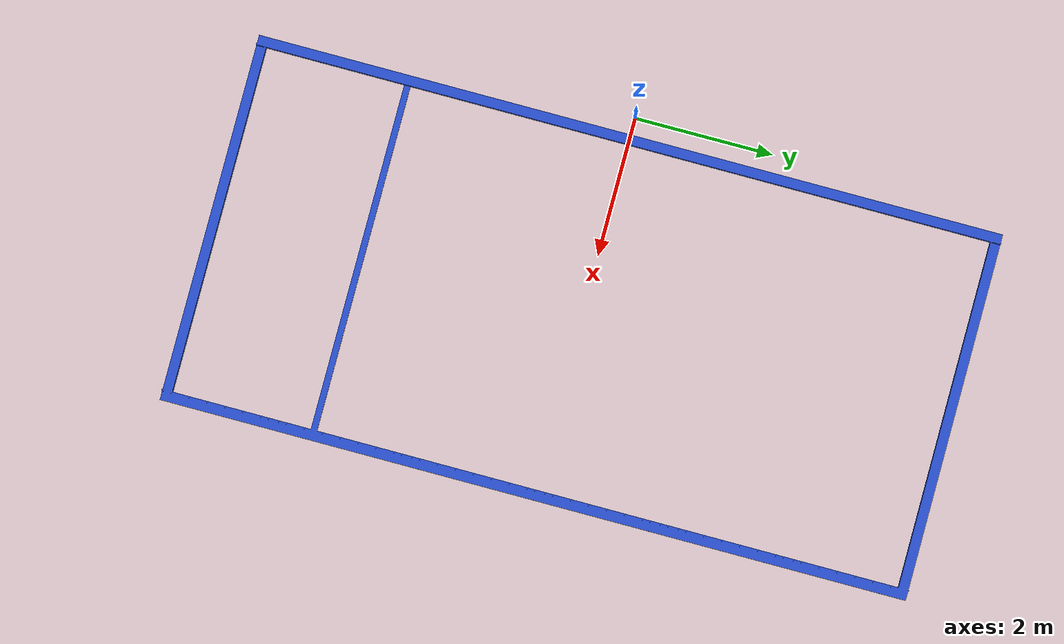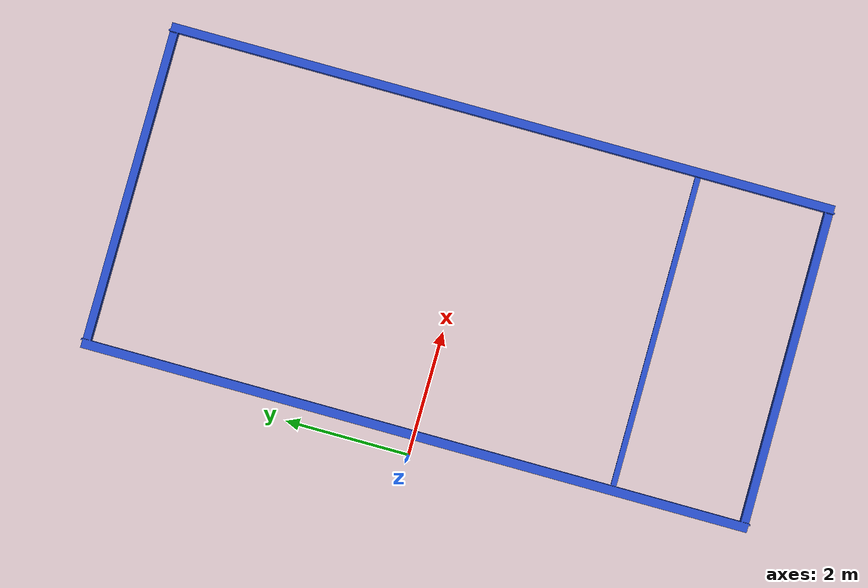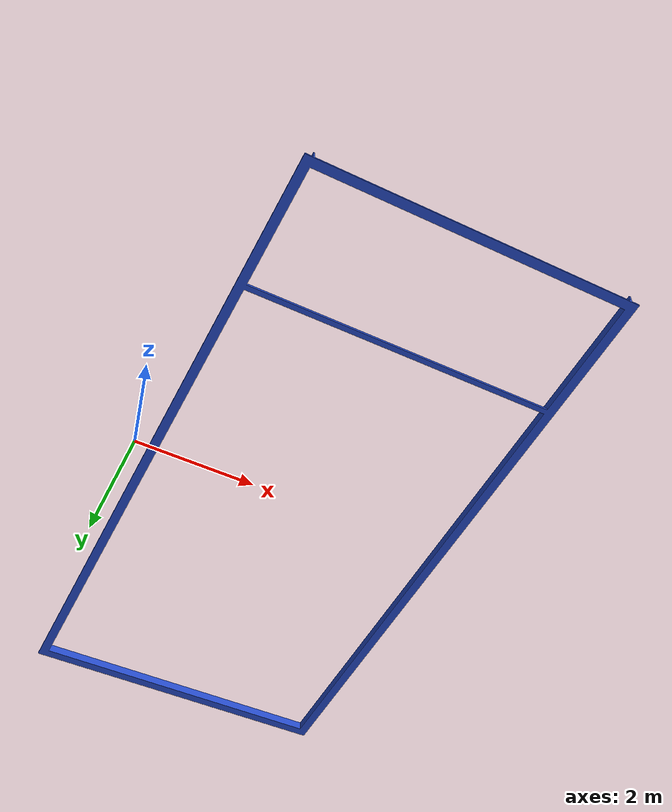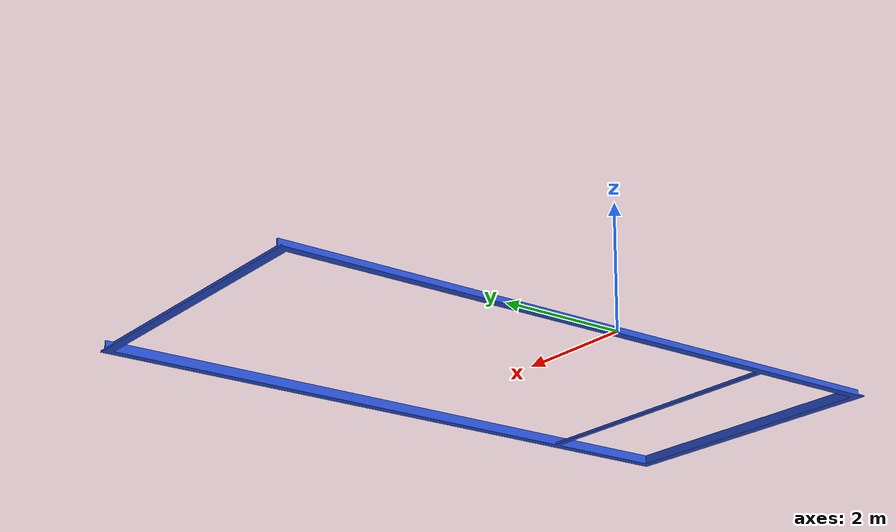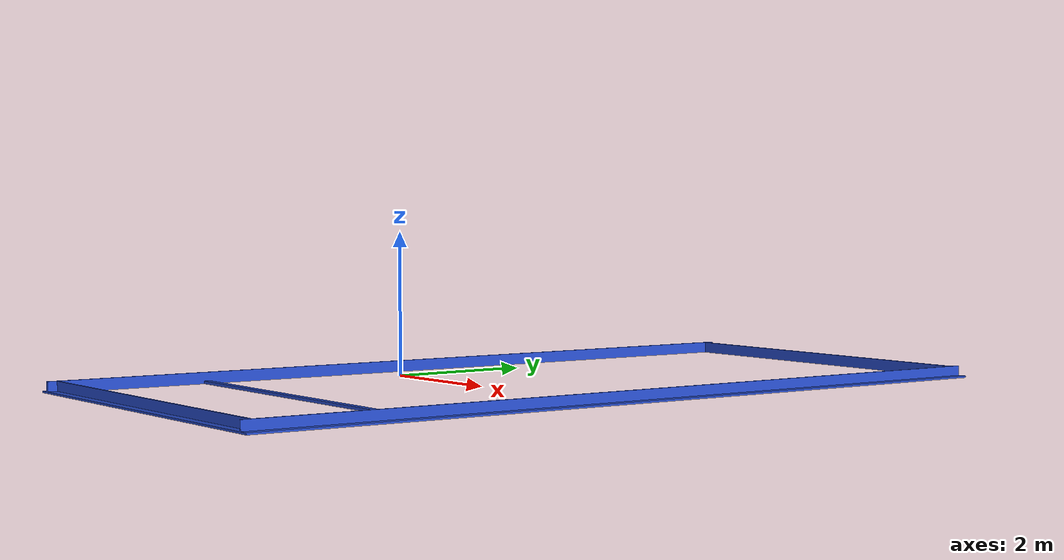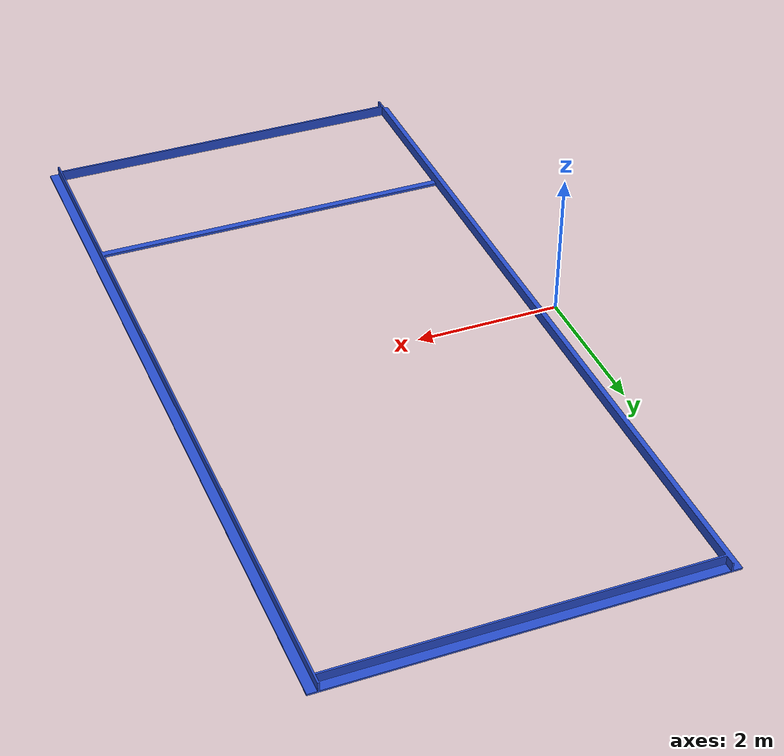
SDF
<?xml version="1.0" encoding="UTF-8"?>
<sdf version="1.5">
  <model name="fence">
    <link name="link">
      <collision name="collision">
        <geometry>
          <mesh>
            <uri>model://fence/meshes/fence.stl</uri>
          </mesh>
        </geometry>
      </collision>
      <visual name="visual">
        <geometry>
          <mesh>
            <uri>model://fence/meshes/fence.stl</uri>
          </mesh>
        </geometry>
        <material>
          <script>
            <name>Gazebo/Blue</name>
          </script>
        </material>
      </visual>
    </link>
  </model>
</sdf>
